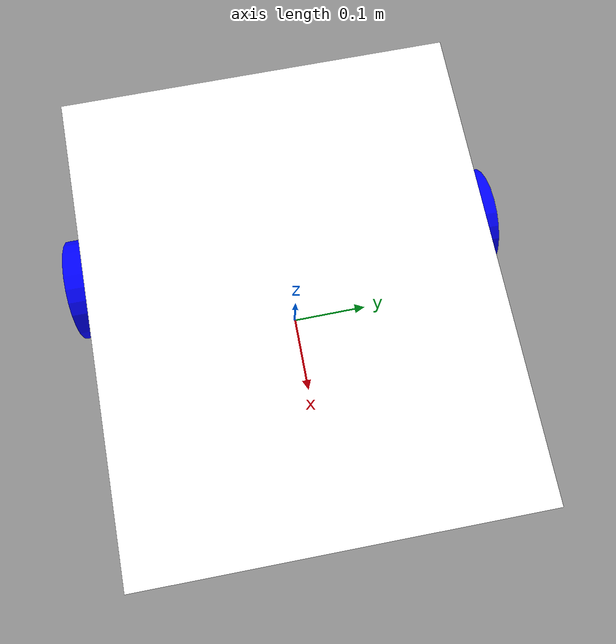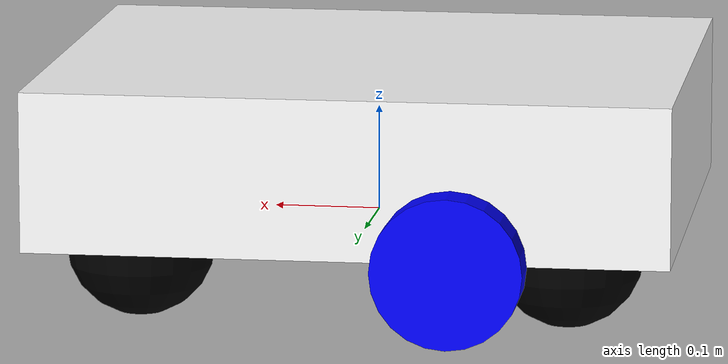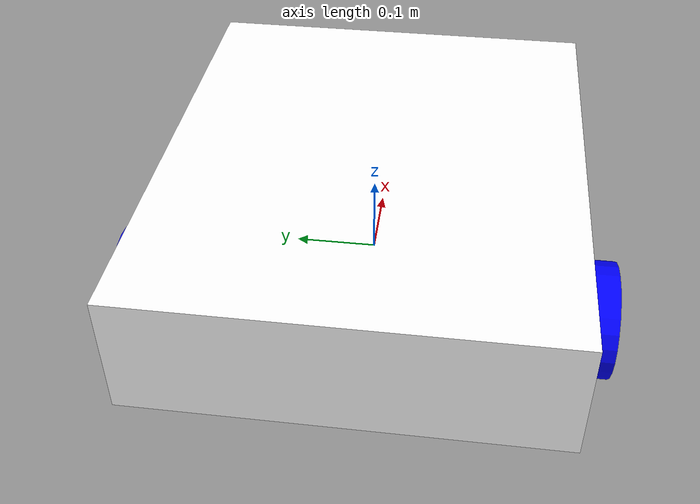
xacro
<?xml version="1.0"?>
<robot xmlns:xacro="http://www.ros.org/wiki/xacro">

    <xacro:include filename="inertial_macros.xacro"/>

    <material name="white">
        <color rgba="1 1 1 1" />
    </material>

    <material name="blue">
        <color rgba="0 0 1 1" />
    </material>

    <material name="orange">
        <color rgba="1 0.65 0 1" />
    </material>

    <material name="black">
        <color rgba="0 0 0 1" />
    </material>

    <material name="red">
        <color rgba="1 0 0 1" />
    </material>

    <!--BASE LINK-->
    <link name="base_link">
        <!-- You can add visuals and collision properties for the base_link here if needed -->
    </link>

    <!-- BASE_FOOTPRINT -->
    <joint name="base_footprint_joint" type="fixed">
        <parent link="base_link"/>
        <child link="base_footprint"/>
        <origin xyz="0 0 0" rpy="0 0 0"/>
    </joint>
    <link name="base_footprint">
    </link>

    <!--CHASSIS LINK-->
    <joint name="chassis_joint" type="fixed">
        <parent link="base_link"/>
        <child link="chassis"/>
        <origin xyz="-0.3 0 0"/>
        <xacro:inertial_box mass="2.0" x="0.6" y="0.5" z="0.15">
            <origin xyz="0.3 0 0.075" rpy="0 0 0"/>
        </xacro:inertial_box>
    </joint>

    <link name="chassis">
        <visual>
            <origin xyz="0.3 0 0.075" />
            <geometry>
                <box size="0.6 0.5 0.15" />
            </geometry>
            <material name="white" />
        </visual>
        <collision>
            <origin xyz="0.3 0 0.075" />
            <geometry>
                <box size="0.6 0.5 0.15" />
            </geometry>
        </collision>
    </link>
    <gazebo reference="chassis">
        <material>Gazebo/White</material>
    </gazebo>

    <!--LEFT WHEEL LINK-->
    <joint name="left_wheel_joint" type="continuous">
        <parent link="base_link"/>
        <child link="left_wheel"/>
        <origin xyz="-0.10 0.275 0" rpy="-${pi/2} 0 0"/>
        <axis xyz="0 0 1"/>
    </joint>

    <link name="left_wheel">
        <visual>
            <origin xyz="0 0 0"/>
            <geometry>
                <cylinder radius="0.07" length="0.04"/>
            </geometry>
            <material name="blue"/>
        </visual>
        <collision>
            <origin xyz="0 0 0"/>
            <geometry>
                <sphere radius="0.07"/>
            </geometry>
        </collision>
        <xacro:inertial_cylinder mass="0.1" length="0.04" radius="0.07">
            <origin xyz="0 0 0" rpy="0 0 0"/>
        </xacro:inertial_cylinder>
    </link>
    <gazebo reference="left_wheel">
        <material>Gazebo/Blue</material>
    </gazebo>

    <!--RIGHT WHEEL LINK-->
    <joint name="right_wheel_joint" type="continuous">
        <parent link="base_link"/>
        <child link="right_wheel"/>
        <origin xyz="-0.10 -0.275 0" rpy="${pi/2} 0 0"/>
        <axis xyz="0 0 -1"/>
    </joint>

    <link name="right_wheel">
        <visual>
            <origin xyz="0 0 0"/>
            <geometry>
                <cylinder radius="0.07" length="0.04"/>
            </geometry>
            <material name="blue"/>
        </visual>
        <collision>
            <origin xyz="0 0 0"/>
            <geometry>
                <sphere radius="0.07"/>
            </geometry>
        </collision>
        <xacro:inertial_cylinder mass="0.1" length="0.04" radius="0.07">
            <origin xyz="0 0 0" rpy="0 0 0"/>
        </xacro:inertial_cylinder>
    </link>
    <gazebo reference="right_wheel">
        <material>Gazebo/Blue</material>
    </gazebo>

    <!--CASTER WHEEL FRONT RIGHT-->
    <joint name="caster_wheel_front_right_joint" type="fixed">
        <parent link="chassis"/>
        <child link="caster_wheel_front_right"/>
        <origin xyz="0.50 0.175 0"/>
    </joint>

    <link name="caster_wheel_front_right">
        <visual>
            <origin xyz="0 0 0"/>
            <geometry>
                <sphere radius="0.07"/>
            </geometry>
            <material name="black"/>
        </visual>
        <collision>
            <origin xyz="0 0 0"/>
            <geometry>
                <sphere radius="0.07"/>
            </geometry>
        </collision>
        <xacro:inertial_sphere mass="0.1" radius="0.07">
            <origin xyz="0 0 0" rpy="0 0 0"/>
        </xacro:inertial_sphere>
    </link>
    <gazebo reference="caster_wheel_front_right">
        <material>Gazebo/Black</material>
        <mu1 value="0.0001"/>
        <mu2 value="0.0001"/>
    </gazebo>

    <!--CASTER WHEEL FRONT LEFT-->
    <joint name="caster_wheel_front_left_joint" type="fixed">
        <parent link="chassis"/>
        <child link="caster_wheel_front_left"/>
        <origin xyz="0.50 -0.175 0"/>
    </joint>

    <link name="caster_wheel_front_left">
        <visual>
            <origin xyz="0 0 0"/>
            <geometry>
                <sphere radius="0.07"/>
            </geometry>
            <material name="black"/>
        </visual>
        <collision>
            <origin xyz="0 0 0"/>
            <geometry>
                <sphere radius="0.07"/>
            </geometry>
        </collision>
        <xacro:inertial_sphere mass="0.1" radius="0.07">
            <origin xyz="0 0 0" rpy="0 0 0"/>
        </xacro:inertial_sphere>
    </link>
    <gazebo reference="caster_wheel_front_left">
        <material>Gazebo/Black</material>
        <mu1 value="0.0001"/>
        <mu2 value="0.0001"/>
    </gazebo>

    <!--CASTER WHEEL BACK RIGHT-->
    <joint name="caster_wheel_back_right_joint" type="fixed">
        <parent link="chassis"/>
        <child link="caster_wheel_back_right"/>
        <origin xyz="0.10 0.175 0"/>
    </joint>

    <link name="caster_wheel_back_right">
        <visual>
            <origin xyz="0 0 0"/>
            <geometry>
                <sphere radius="0.07"/>
            </geometry>
            <material name="black"/>
        </visual>
        <collision>
            <origin xyz="0 0 0"/>
            <geometry>
                <sphere radius="0.07"/>
            </geometry>
        </collision>
        <xacro:inertial_sphere mass="0.1" radius="0.07">
            <origin xyz="0 0 0" rpy="0 0 0"/>
        </xacro:inertial_sphere>
    </link>
    <gazebo reference="caster_wheel_back_right">
        <material>Gazebo/Black</material>
        <mu1 value="0.0001"/>
        <mu2 value="0.0001"/>
    </gazebo>

    <!--CASTER WHEEL BACK LEFT-->
    <joint name="caster_wheel_back_left_joint" type="fixed">
        <parent link="chassis"/>
        <child link="caster_wheel_back_left"/>
        <origin xyz="0.10 -0.175 0"/>
    </joint>

    <link name="caster_wheel_back_left">
        <visual>
            <origin xyz="0 0 0"/>
            <geometry>
                <sphere radius="0.07"/>
            </geometry>
            <material name="black"/>
        </visual>
        <collision>
            <origin xyz="0 0 0"/>
            <geometry>
                <sphere radius="0.07"/>
            </geometry>
        </collision>
        <xacro:inertial_sphere mass="0.1" radius="0.07">
            <origin xyz="0 0 0" rpy="0 0 0"/>
        </xacro:inertial_sphere>
    </link>
    <gazebo reference="caster_wheel_back_left">
        <material>Gazebo/Black</material>
        <mu1 value="0.0001"/>
        <mu2 value="0.0001"/>
    </gazebo>

</robot>
